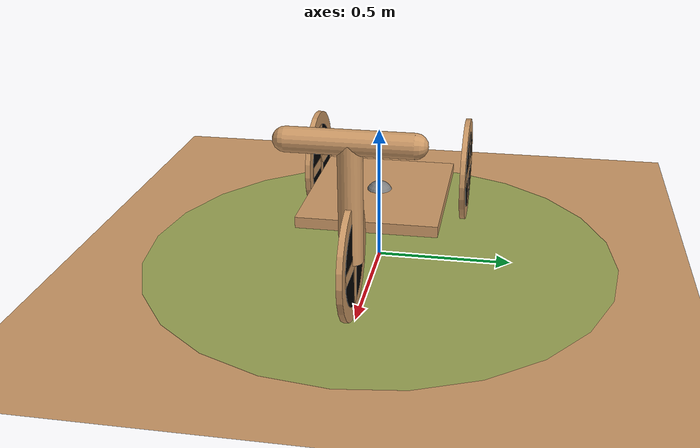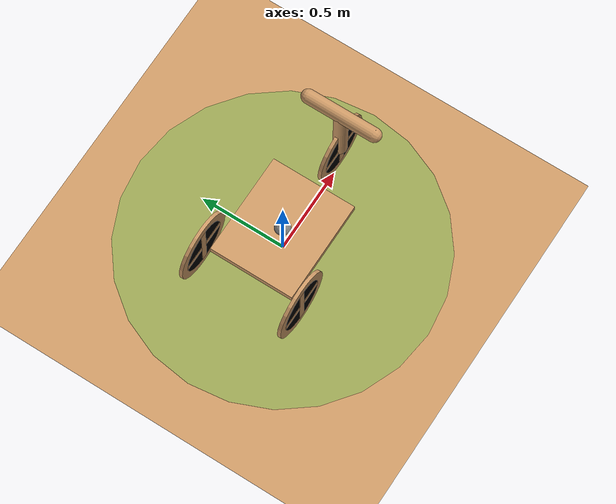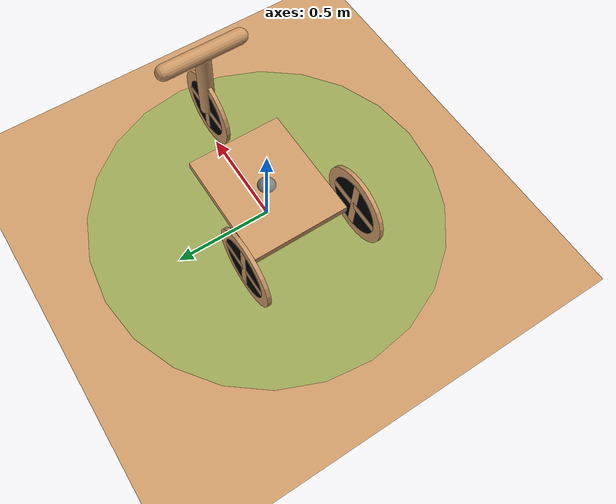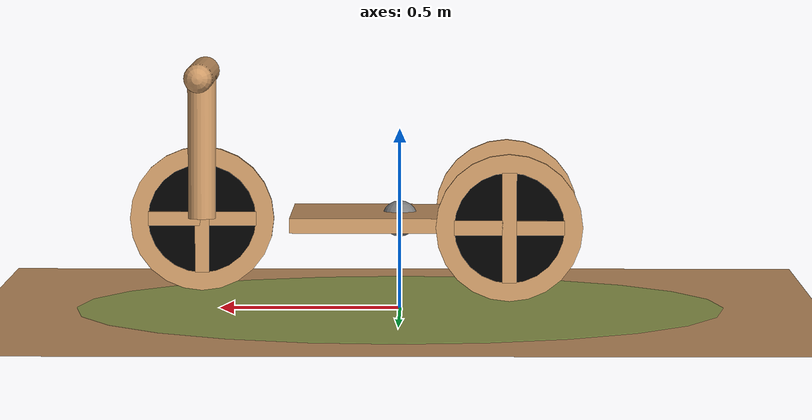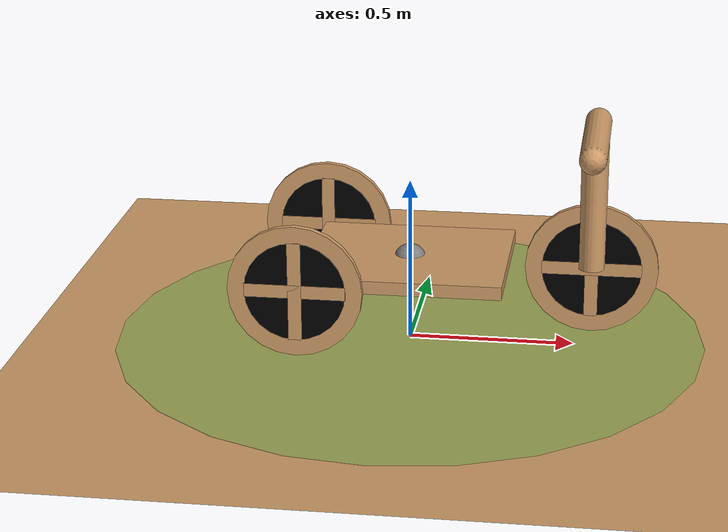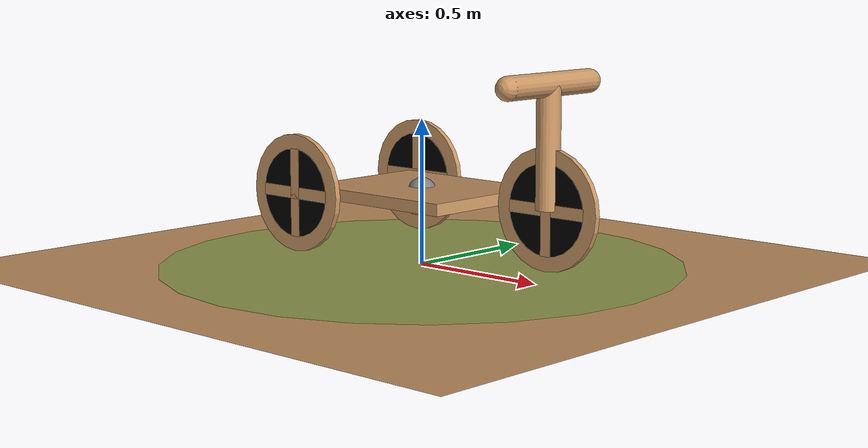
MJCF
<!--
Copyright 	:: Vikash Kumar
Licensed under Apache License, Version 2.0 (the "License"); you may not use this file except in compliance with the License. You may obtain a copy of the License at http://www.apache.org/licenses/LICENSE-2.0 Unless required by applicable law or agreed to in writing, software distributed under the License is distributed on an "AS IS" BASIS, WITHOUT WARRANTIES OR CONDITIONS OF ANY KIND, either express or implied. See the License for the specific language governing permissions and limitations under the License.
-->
<mujoco model='tricycle-v1.5'>

	<compiler inertiafromgeom='true' angle='radian' coordinate='local'/>
	<default>
		<joint limited='true' damping='.1' armature='0' />
		<geom contype='1' density="1000" condim='1' conaffinity='1' friction='.7 .01 .002' rgba='0.8 0.6 .4 1' margin='0.02' material="geom"/>
		<motor ctrlrange='-1 1'  ctrllimited='true'/>
	</default>

	<option timestep='0.002'/>

	<visual>
        <map fogstart="3" fogend="5" force="0.1" znear="0.2"/>
        <quality shadowsize="2048" offsamples="8"/>
        <global offwidth="800" offheight="800"/>
    </visual>

    <asset>
        <texture name="skybox" type="skybox" builtin="gradient" rgb1=".08 .09 .10" rgb2="0 0 0"
               width="800" height="800" mark="random" markrgb=".8 .8 .8"/>
        <texture name="texgeom" type="cube" builtin="flat" mark="cross" width="127" height="1278"
            rgb1="0.8 0.6 0.4" rgb2="0.8 0.6 0.4" markrgb="1 1 1" random="0.01"/>
        <texture name="texplane" type="2d" builtin="checker" rgb1=".2 .3 .4" rgb2=".1 0.15 0.2"
            width="512" height="512"/>

        <material name='MatPlane' reflectance='0.3' texture="texplane" texrepeat="1 1" texuniform="true"/>
        <material name='geom' texture="texgeom" texuniform="true"/>
    </asset>

    <worldbody>
        <geom name='floor' pos='0 0 0' size='15 15 .125' type='plane' material="MatPlane" condim='3'/>
        <light mode='targetbodycom' target='torso' directional='false' diffuse='.8 .8 .8' specular='0.3 0.3 0.3' pos='0 0 4.0' dir='0 0 -1'/>
        <site name='target' pos='0 0 0' size='.9 .001' type='cylinder' rgba='0.2 0.8 0.2 .3' />

		<body name='torso' pos='0 0 .25'>
			<joint name='root' type='free' pos='0 0 0' limited='false' damping='0' armature='0'/>
			<geom type='box' size='.30 .25 .02' pos='0 0 0' mass='10'/>
			<site name="root" type='sphere' size=".05" pos="0 0 0"/>
			<body pos='-.3 -.3 0' name='l_wheel'>
				<joint name='l_wheel' type='hinge' pos='0 0 0' axis='0 1 0' limited='false' stiffness='0' armature='0' damping='0.1'/>
				<geom name='l_wheel' type='cylinder' fromto='0 -.01 0    0 0.01 0'  size='0.20' condim='6'/>
				<geom name='l_wheel0' type='cylinder' fromto='0 -.011 0    0 0.011 0'  size='0.15' rgba='0 0 0 1' contype='0' conaffinity='0' density='0'/>
				<geom name='l_decoration1' type='box'   size='0.15 0.012 0.02' contype='0' conaffinity='0' density='0'/>
				<geom name='l_decoration2' type='box'   size='0.02 0.012 0.15' contype='0' conaffinity='0' density='0'/>
			</body>
			<body pos='-.3 .3 0' name='r_wheel'>
				<joint name='r_wheel' type='hinge' pos='0 0 0' axis='0 1 0' limited='false' stiffness='0' armature='0' damping='0.1'/>
				<geom name='r_wheel' type='cylinder' fromto='0 -.01 0    0 0.01 0'  size='0.20' condim='6'/>
				<geom name='r_wheel0' type='cylinder' fromto='0 -.011 0    0 0.011 0'  size='0.15' rgba='0 0 0 1' contype='0' conaffinity='0' density='0'/>
				<geom name='r_decoration1' type='box'   size='0.15 0.012 0.02' contype='0' conaffinity='0' density='0'/>
				<geom name='r_decoration2' type='box'   size='0.02 0.012 0.15' contype='0' conaffinity='0' density='0'/>
			</body>

			<body pos='.55 0 0' name='handle'>
				<light name='headlight' directional='false' diffuse='20 20 20' pos='0 0 .2' dir='2 0 -1' cutoff='60'/>

				<joint name='handle' type='hinge' pos='0 0 0' axis='0 0 1' limited='true' range='-.5 .5' stiffness='0' armature='0' damping='0.1'/>
				<geom type='cylinder' size='.04 .2' pos='0 0 0.2'/>
				<geom type='capsule' size='.04 .2' pos='0 0 0.4' euler='1.57 0 0'/>

				<body pos='0 0 0' name='f_wheel'>
					<joint name='f_wheel' type='hinge' pos='0 0 0' axis='0 1 0' limited='false' stiffness='0' armature='0' damping='0.1'/>
					<geom name='f_wheel' type='cylinder' fromto='0 -.01 0    0 0.01 0'  size='0.20' condim='6'/>
					<geom name='f_wheel0' type='cylinder' fromto='0 -.011 0    0 0.011 0'  size='0.15' rgba='0 0 0 1' contype='0' conaffinity='0' density='0'/>
					<geom name='f_decoration1' type='box'   size='0.15 0.012 0.02' contype='0' conaffinity='0' density='0'/>
					<geom name='f_decoration2' type='box'   size='0.02 0.012 0.15' contype='0' conaffinity='0' density='0'/>
				</body>

			</body>

		</body>

	</worldbody>

	<actuator>
        <motor name="f_wheel" joint="f_wheel" gear="2.5" />
        <motor name="handle" joint="handle" gear="10" />
	</actuator>

</mujoco>
